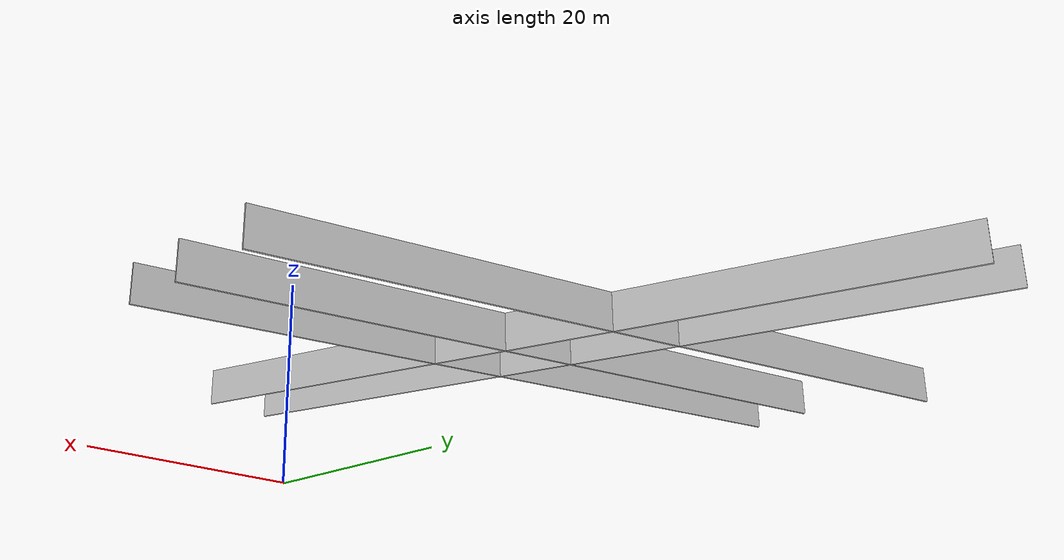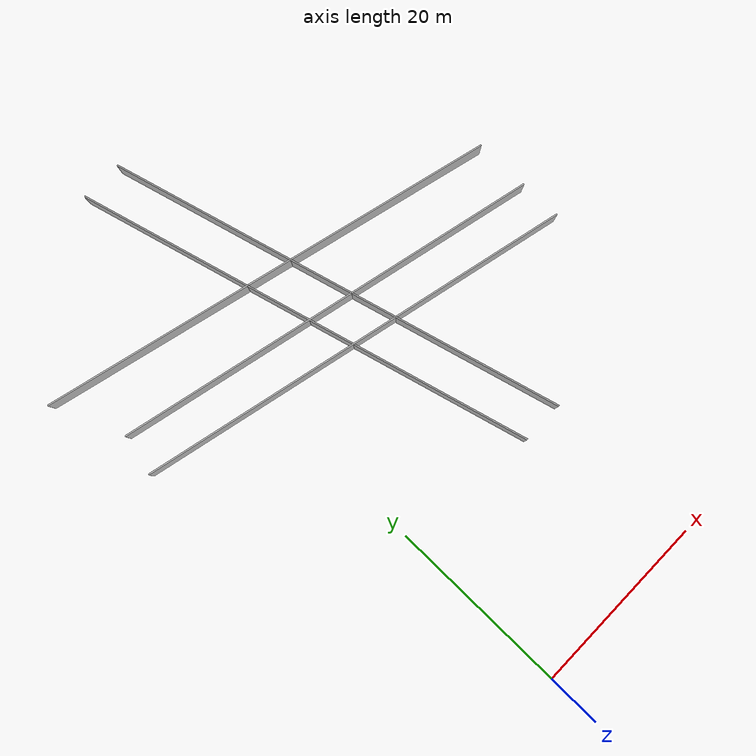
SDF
<?xml version="1.0" ?>
<sdf version="1.6">
  <model name="sps_0706">
    <pose frame="">0 0 0 0 -0 0</pose>
    <static>1</static>
    <self_collide>0</self_collide>
    <allow_auto_disable>0</allow_auto_disable>
    <link name="Wall94">
      <kinematic>0</kinematic>
      <gravity>1</gravity>
      <self_collide>0</self_collide>
      <collision name="collision">
        <geometry>
          <box>
            <size>51.7448 0.15 2.5</size>
          </box>
        </geometry>
        <pose frame="">0 0 0 0 -0 0</pose>
      </collision>
      <visual name="visual">
        <geometry>
          <box>
            <size>51.7448 0.15 2.5</size>
          </box>
        </geometry>
        <pose frame="">0 0 0 0 -0 0</pose>
        <cast_shadows>1</cast_shadows>
        <transparency>0.0</transparency>
      </visual>
      <pose frame="">13.3133 42.8931 1.25 0 -0 1.83122</pose>
    </link>
    <link name="Wall406">
      <kinematic>0</kinematic>
      <gravity>1</gravity>
      <self_collide>0</self_collide>
      <collision name="collision">
        <geometry>
          <box>
            <size>51.5614 0.15 2.5</size>
          </box>
        </geometry>
        <pose frame="">0 0 0 0 -0 0</pose>
      </collision>
      <visual name="visual">
        <geometry>
          <box>
            <size>51.5614 0.15 2.5</size>
          </box>
        </geometry>
        <pose frame="">0 0 0 0 -0 0</pose>
        <cast_shadows>1</cast_shadows>
        <transparency>0.0</transparency>
      </visual>
      <pose frame="">9.46944 48.4647 1.25 0 -0 2.89487</pose>
    </link>
    <link name="Wall415">
      <kinematic>0</kinematic>
      <gravity>1</gravity>
      <self_collide>0</self_collide>
      <collision name="collision">
        <geometry>
          <box>
            <size>49.0514 0.15 2.5</size>
          </box>
        </geometry>
        <pose frame="">0 0 0 0 -0 0</pose>
      </collision>
      <visual name="visual">
        <geometry>
          <box>
            <size>49.0514 0.15 2.5</size>
          </box>
        </geometry>
        <pose frame="">0 0 0 0 -0 0</pose>
        <cast_shadows>1</cast_shadows>
        <transparency>0.0</transparency>
      </visual>
      <pose frame="">10.5799 37.0054 1.25 0 -0 2.91334</pose>
    </link>
    <link name="Wall420">
      <kinematic>0</kinematic>
      <gravity>1</gravity>
      <self_collide>0</self_collide>
      <collision name="collision">
        <geometry>
          <box>
            <size>48.001 0.15 2.5</size>
          </box>
        </geometry>
        <pose frame="">0 0 0 0 -0 0</pose>
      </collision>
      <visual name="visual">
        <geometry>
          <box>
            <size>48.001 0.15 2.5</size>
          </box>
        </geometry>
        <pose frame="">0 0 0 0 -0 0</pose>
        <cast_shadows>1</cast_shadows>
        <transparency>0.0</transparency>
      </visual>
      <pose frame="">11.0915 41.5319 1.25 0 -0 2.91334</pose>
    </link>
    <link name="Wall500">
      <kinematic>0</kinematic>
      <gravity>1</gravity>
      <self_collide>0</self_collide>
      <collision name="collision">
        <geometry>
          <box>
            <size>51.7448 0.15 2.5</size>
          </box>
        </geometry>
        <pose frame="">0 0 0 0 -0 0</pose>
      </collision>
      <visual name="visual">
        <geometry>
          <box>
            <size>51.7448 0.15 2.5</size>
          </box>
        </geometry>
        <pose frame="">0 0 0 0 -0 0</pose>
        <cast_shadows>1</cast_shadows>
        <transparency>0.0</transparency>
      </visual>
      <pose frame="">8.65591 42.8931 1.25 0 -0 1.83122</pose>
    </link>
  </model>
</sdf>
